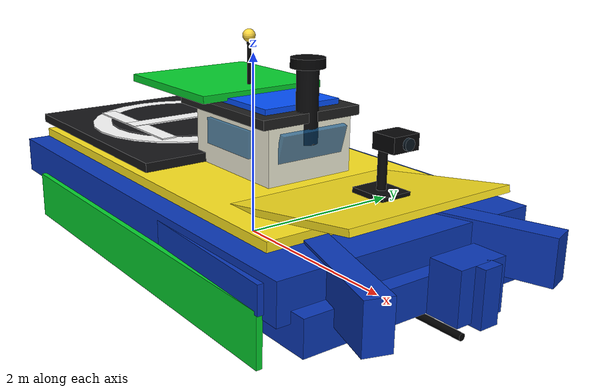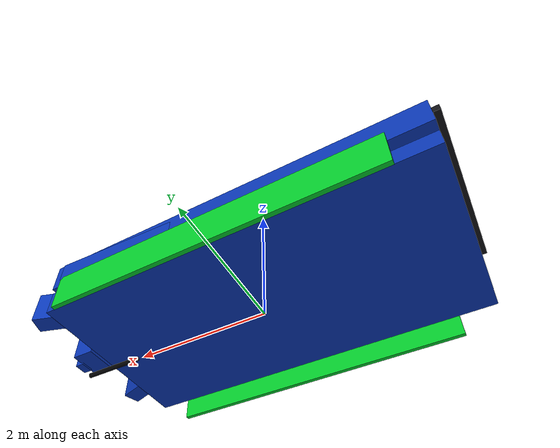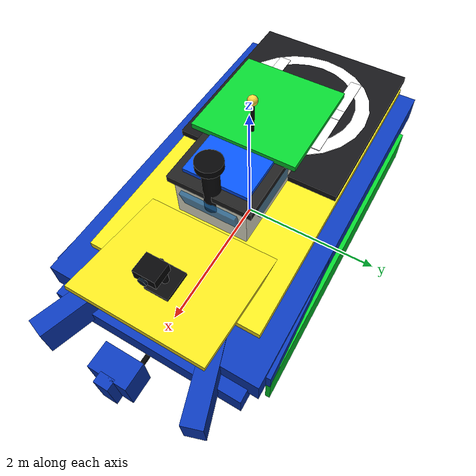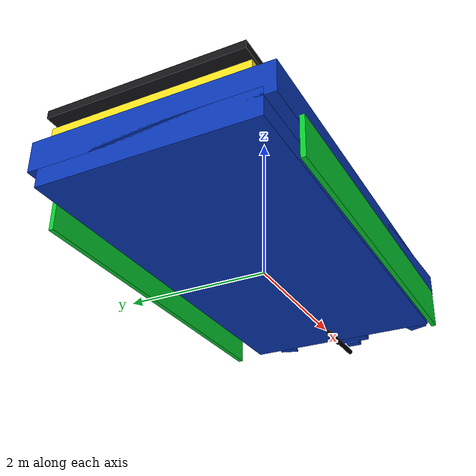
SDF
<?xml version="1.0"?>
<sdf version="1.10">
  <model name="sim332_usv_green">
    <include merge="true"><uri>model://defense_own_02_boat</uri></include>
    <link name="identity_shell">
      <visual name="port_band"><pose>0 1.53 0.12 0 0 0</pose><geometry><box><size>4.5 0.06 0.52</size></box></geometry><material><ambient>0.01 0.42 0.10 1</ambient><diffuse>0.02 0.82 0.18 1</diffuse><emissive>0 0.10 0.02 1</emissive></material></visual>
      <visual name="starboard_band"><pose>0 -1.53 0.12 0 0 0</pose><geometry><box><size>4.5 0.06 0.52</size></box></geometry><material><ambient>0.01 0.42 0.10 1</ambient><diffuse>0.02 0.82 0.18 1</diffuse><emissive>0 0.10 0.02 1</emissive></material></visual>
      <visual name="roof_id"><pose>-0.55 0 1.62 0 0 0</pose><geometry><box><size>1.5 1.5 0.08</size></box></geometry><material><ambient>0.01 0.42 0.10 1</ambient><diffuse>0.02 0.82 0.18 1</diffuse></material></visual>
    </link>
    <joint name="identity_joint" type="fixed"><parent>hull</parent><child>identity_shell</child></joint>
    <link name="ardupilot_io_left"><pose>0 0 0.3 0 0 0</pose><inertial><mass>0.001</mass><inertia><ixx>0.000001</ixx><iyy>0.000001</iyy><izz>0.000001</izz></inertia></inertial></link>
    <link name="ardupilot_io_right"><inertial><mass>0.001</mass><inertia><ixx>0.000001</ixx><iyy>0.000001</iyy><izz>0.000001</izz></inertia></inertial></link>
    <joint name="ardupilot_left_joint" type="fixed"><parent>hull</parent><child>ardupilot_io_left</child></joint><joint name="ardupilot_right_joint" type="fixed"><parent>hull</parent><child>ardupilot_io_right</child></joint>
    <plugin name="ArduPilotPlugin" filename="ArduPilotPlugin"><fdm_addr>127.0.0.1</fdm_addr><fdm_port_in>9042</fdm_port_in><connectionTimeoutMaxCount>5</connectionTimeoutMaxCount><lock_step>0</lock_step><no_time_sync>1</no_time_sync><derive_imu_accel_from_velocity>true</derive_imu_accel_from_velocity><modelXYZToAirplaneXForwardZDown degrees="true">0 0 0 180 0 0</modelXYZToAirplaneXForwardZDown><gazeboXYZToNED degrees="true">0 0 0 180 0 90</gazeboXYZToNED><imuName>hull::ardupilot_imu</imuName><control channel="0"><jointName>ardupilot_left_joint</jointName><type>COMMAND</type><servo_min>1000</servo_min><servo_max>2000</servo_max><cmd_topic>/model/usv_02/ardupilot/left</cmd_topic></control><control channel="2"><jointName>ardupilot_right_joint</jointName><type>COMMAND</type><servo_min>1000</servo_min><servo_max>2000</servo_max><cmd_topic>/model/usv_02/ardupilot/right</cmd_topic></control></plugin>
    <plugin name="uav_usv_gazebo::ArduPilotRoverBridge" filename="ArduPilotRoverBridge"><left_topic>/model/usv_02/ardupilot/left</left_topic><right_topic>/model/usv_02/ardupilot/right</right_topic><output_topic>/model/own_02/cmd_vel</output_topic><max_speed>10.0</max_speed><max_yaw_rate>0.9</max_yaw_rate><max_linear_accel>2.0</max_linear_accel><max_yaw_accel>0.8</max_yaw_accel></plugin>
  </model>
</sdf>

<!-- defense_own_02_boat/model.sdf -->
<sdf version="1.8">
  <model name="defense_own_02_boat">
    <pose>0 0 0.4375 0 0 0</pose>

    <link name="hull">
      <enable_wind>true</enable_wind>
      <inertial>
        <mass>150.0</mass>
        <inertia>
          <ixx>85.0</ixx>
          <iyy>180.0</iyy>
          <izz>220.0</izz>
          <ixy>0</ixy>
          <ixz>0</ixz>
          <iyz>0</iyz>
        </inertia>
      </inertial>

      <!-- Keep the ArduPilot IMU on the canonical link so Gazebo supplies
           gravity / specific force to ArduRover's EKF. -->
      <sensor name="ardupilot_imu" type="imu">
        <pose degrees="true">0 0 0 180 0 0</pose>
        <always_on>true</always_on>
        <update_rate>1000</update_rate>
      </sensor>

      <collision name="hull_collision">
        <pose>0 0 -0.0625 0 0 0</pose>
        <geometry>
          <box>
            <size>5.61 3.135 0.625</size>
          </box>
        </geometry>
      </collision>

      <visual name="lower_hull">
        <pose>-0.0825 0 -0.2 0 0 0</pose>
        <geometry>
          <box>
            <size>5.3625 2.7225 0.35</size>
          </box>
        </geometry>
        <material>
          <ambient>0.02 0.10 0.28 1</ambient>
          <diffuse>0.04 0.22 0.72 1</diffuse>
          <specular>0.1 0.1 0.1 1</specular>
        </material>
      </visual>

      <visual name="upper_hull">
        <pose>-0.165 0 0.0625 0 0 0</pose>
        <geometry>
          <box>
            <size>5.1975 3.003 0.4</size>
          </box>
        </geometry>
        <material>
          <ambient>0.02 0.10 0.28 1</ambient>
          <diffuse>0.04 0.22 0.72 1</diffuse>
          <specular>0.18 0.18 0.2 1</specular>
        </material>
      </visual>

      <visual name="bow_side_left">
        <pose>2.409 0.858 0.05 0 0 0.31</pose>
        <geometry>
          <box>
            <size>1.518 0.264 0.475</size>
          </box>
        </geometry>
        <material>
          <ambient>0.02 0.10 0.28 1</ambient>
          <diffuse>0.04 0.22 0.72 1</diffuse>
          <specular>0.18 0.18 0.2 1</specular>
        </material>
      </visual>

      <visual name="bow_side_right">
        <pose>2.409 -0.858 0.05 0 0 -0.31</pose>
        <geometry>
          <box>
            <size>1.518 0.264 0.475</size>
          </box>
        </geometry>
        <material>
          <ambient>0.02 0.10 0.28 1</ambient>
          <diffuse>0.04 0.22 0.72 1</diffuse>
          <specular>0.18 0.18 0.2 1</specular>
        </material>
      </visual>

      <visual name="bow_center_nose">
        <pose>3.003 0 0.05 0 0 0</pose>
        <geometry>
          <box>
            <size>0.33 0.528 0.5</size>
          </box>
        </geometry>
        <material>
          <ambient>0.02 0.10 0.28 1</ambient>
          <diffuse>0.04 0.22 0.72 1</diffuse>
          <specular>0.16 0.16 0.18 1</specular>
        </material>
      </visual>

      <visual name="bow_keel_line">
        <pose>2.5575 0 -0.425 0 1.5708 0</pose>
        <geometry>
          <cylinder>
            <radius>0.035</radius>
            <length>0.9</length>
          </cylinder>
        </geometry>
        <material>
          <ambient>0.006 0.006 0.008 1</ambient>
          <diffuse>0.012 0.012 0.014 1</diffuse>
        </material>
      </visual>

      <visual name="foredeck_slope">
        <pose>1.7325 0 0.45 0 -0.16 0</pose>
        <geometry>
          <box>
            <size>1.815 1.914 0.06875</size>
          </box>
        </geometry>
        <material>
          <ambient>0.75 0.75 0.08 1</ambient>
          <diffuse>1.00 0.90 0.12 1</diffuse>
          <specular>0.08 0.08 0.08 1</specular>
        </material>
      </visual>

      <visual name="bow_stem">
        <pose>3.201 0 0.0375 0 0 0</pose>
        <geometry>
          <box>
            <size>0.132 0.198 0.525</size>
          </box>
        </geometry>
        <material>
          <ambient>0.02 0.10 0.28 1</ambient>
          <diffuse>0.04 0.22 0.72 1</diffuse>
          <specular>0.16 0.16 0.18 1</specular>
        </material>
      </visual>

      <visual name="hull_side_fairing_left">
        <pose>0.0825 1.419 0.05 0 0 0.035</pose>
        <geometry>
          <box>
            <size>4.3725 0.132 0.275</size>
          </box>
        </geometry>
        <material>
          <ambient>0.02 0.10 0.28 1</ambient>
          <diffuse>0.04 0.22 0.72 1</diffuse>
          <specular>0.14 0.14 0.16 1</specular>
        </material>
      </visual>

      <visual name="hull_side_fairing_right">
        <pose>0.0825 -1.419 0.05 0 0 -0.035</pose>
        <geometry>
          <box>
            <size>4.3725 0.132 0.275</size>
          </box>
        </geometry>
        <material>
          <ambient>0.02 0.10 0.28 1</ambient>
          <diffuse>0.04 0.22 0.72 1</diffuse>
          <specular>0.14 0.14 0.16 1</specular>
        </material>
      </visual>

      <visual name="deck">
        <pose>-0.4125 0 0.3125 0 0 0</pose>
        <geometry>
          <box>
            <size>4.7025 2.475 0.1</size>
          </box>
        </geometry>
        <material>
          <ambient>0.75 0.75 0.08 1</ambient>
          <diffuse>1.00 0.90 0.12 1</diffuse>
          <specular>0.08 0.08 0.08 1</specular>
        </material>
      </visual>

      <visual name="cabin_body">
        <pose>0.33 0 0.725 0 0 0</pose>
        <geometry>
          <box>
            <size>1.287 1.023 0.6</size>
          </box>
        </geometry>
        <material>
          <ambient>0.86 0.86 0.8 1</ambient>
          <diffuse>0.96 0.95 0.86 1</diffuse>
          <specular>0.28 0.28 0.24 1</specular>
        </material>
      </visual>

      <visual name="front_window">
        <pose>0.99 0 0.8 0 0.28 0</pose>
        <geometry>
          <box>
            <size>0.05775 0.792 0.3</size>
          </box>
        </geometry>
        <material>
          <ambient>0.05 0.22 0.36 0.65</ambient>
          <diffuse>0.08 0.38 0.62 0.65</diffuse>
          <specular>0.9 0.95 1 1</specular>
        </material>
      </visual>

      <visual name="left_window">
        <pose>0.33 0.53625 0.8 0 0 0</pose>
        <geometry>
          <box>
            <size>0.7425 0.04125 0.275</size>
          </box>
        </geometry>
        <material>
          <ambient>0.05 0.22 0.36 0.65</ambient>
          <diffuse>0.08 0.38 0.62 0.65</diffuse>
          <specular>0.9 0.95 1 1</specular>
        </material>
      </visual>

      <visual name="right_window">
        <pose>0.33 -0.53625 0.8 0 0 0</pose>
        <geometry>
          <box>
            <size>0.7425 0.04125 0.275</size>
          </box>
        </geometry>
        <material>
          <ambient>0.05 0.22 0.36 0.65</ambient>
          <diffuse>0.08 0.38 0.62 0.65</diffuse>
          <specular>0.9 0.95 1 1</specular>
        </material>
      </visual>

      <visual name="cabin_roof">
        <pose>0.2475 0 1.0625 0 0 0</pose>
        <geometry>
          <box>
            <size>1.518 1.188 0.1</size>
          </box>
        </geometry>
        <material>
          <ambient>0.08 0.08 0.08 1</ambient>
          <diffuse>0.12 0.12 0.12 1</diffuse>
          <specular>0.18 0.18 0.18 1</specular>
        </material>
      </visual>

      <!-- Visual-only friendly identity plate. -->
      <visual name="friendly_identity_roof">
        <pose>0.2475 0 1.13 0 0 0</pose>
        <geometry><box><size>1.20 0.92 0.08</size></box></geometry>
        <material>
          <ambient>0.01 0.18 0.85 1</ambient>
          <diffuse>0.02 0.32 1.0 1</diffuse>
          <emissive>0 0.05 0.30 1</emissive>
        </material>
      </visual>

      <collision name="landing_pad_collision">
        <pose>-1.518 0 0.45 0 0 0</pose>
        <geometry>
          <box>
            <size>2.805 2.5575 0.3</size>
          </box>
        </geometry>
        <surface>
          <contact>
            <ode>
              <min_depth>0.001</min_depth>
              <max_vel>0</max_vel>
            </ode>
          </contact>
          <friction>
            <ode>
              <mu>1.5</mu>
              <mu2>1.5</mu2>
            </ode>
          </friction>
        </surface>
      </collision>

      <visual name="landing_pad_visual">
        <pose>-1.518 0 0.475 0 0 0</pose>
        <geometry>
          <box>
            <size>2.72 2.46 0.1</size>
          </box>
        </geometry>
        <material>
          <ambient>0.04 0.04 0.045 1</ambient>
          <diffuse>0.08 0.08 0.09 1</diffuse>
          <specular>0.08 0.08 0.08 1</specular>
        </material>
      </visual>

      <visual name="landing_pad_ring">
        <pose>-1.518 0 0.54375 0 0 0</pose>
        <geometry>
          <cylinder>
            <radius>1.08</radius>
            <length>0.015</length>
          </cylinder>
        </geometry>
        <material>
          <ambient>1 1 1 1</ambient>
          <diffuse>1 1 1 1</diffuse>
        </material>
      </visual>

      <visual name="landing_pad_center">
        <pose>-1.518 0 0.55625 0 0 0</pose>
        <geometry>
          <cylinder>
            <radius>0.86</radius>
            <length>0.0175</length>
          </cylinder>
        </geometry>
        <material>
          <ambient>0.04 0.04 0.045 1</ambient>
          <diffuse>0.08 0.08 0.09 1</diffuse>
        </material>
      </visual>

      <visual name="landing_h_left">
        <pose>-1.518 0.62 0.5725 0 0 0</pose>
        <geometry>
          <box>
            <size>1.55 0.18 0.015</size>
          </box>
        </geometry>
        <material>
          <ambient>1 1 1 1</ambient>
          <diffuse>1 1 1 1</diffuse>
        </material>
      </visual>

      <visual name="landing_h_right">
        <pose>-1.518 -0.62 0.5725 0 0 0</pose>
        <geometry>
          <box>
            <size>1.55 0.18 0.015</size>
          </box>
        </geometry>
        <material>
          <ambient>1 1 1 1</ambient>
          <diffuse>1 1 1 1</diffuse>
        </material>
      </visual>

      <visual name="landing_h_crossbar">
        <pose>-1.518 0 0.5775 0 0 0</pose>
        <geometry>
          <box>
            <size>0.2 1.42 0.015</size>
          </box>
        </geometry>
        <material>
          <ambient>1 1 1 1</ambient>
          <diffuse>1 1 1 1</diffuse>
        </material>
      </visual>

      <visual name="mast">
        <pose>-0.0825 0 1.375 0 0 0</pose>
        <geometry>
          <cylinder>
            <radius>0.0225</radius>
            <length>0.6875</length>
          </cylinder>
        </geometry>
        <material>
          <ambient>0.02 0.02 0.02 1</ambient>
          <diffuse>0.02 0.02 0.02 1</diffuse>
        </material>
      </visual>

      <visual name="nav_light">
        <pose>-0.0825 0 1.7375 0 0 0</pose>
        <geometry>
          <sphere>
            <radius>0.06875</radius>
          </sphere>
        </geometry>
        <material>
          <ambient>1 0.85 0.25 1</ambient>
          <diffuse>1 0.85 0.25 1</diffuse>
          <specular>1 0.9 0.5 1</specular>
        </material>
      </visual>

      <visual name="lidar_mount">
        <pose>0.9075 0 1.175 0 0 0</pose>
        <geometry>
          <cylinder>
            <radius>0.1125</radius>
            <length>0.775</length>
          </cylinder>
        </geometry>
        <material>
          <ambient>0.02 0.02 0.022 1</ambient>
          <diffuse>0.04 0.04 0.045 1</diffuse>
          <specular>0.2 0.2 0.22 1</specular>
        </material>
      </visual>

      <visual name="lidar_body">
        <pose>0.9075 0 1.5875 0 0 0</pose>
        <geometry>
          <cylinder>
            <radius>0.175</radius>
            <length>0.1</length>
          </cylinder>
        </geometry>
        <material>
          <ambient>0.01 0.01 0.012 1</ambient>
          <diffuse>0.02 0.02 0.024 1</diffuse>
          <specular>0.35 0.35 0.38 1</specular>
        </material>
      </visual>

      <visual name="front_camera_mount_base">
        <pose>1.98 0 0.56875 0 0 0</pose>
        <geometry>
          <box>
            <size>0.396 0.33 0.05</size>
          </box>
        </geometry>
        <material>
          <ambient>0.025 0.025 0.028 1</ambient>
          <diffuse>0.04 0.04 0.045 1</diffuse>
          <specular>0.18 0.18 0.2 1</specular>
        </material>
      </visual>

      <visual name="front_camera_mount_post">
        <pose>1.98 0 0.8125 0 0 0</pose>
        <geometry>
          <cylinder>
            <radius>0.04375</radius>
            <length>0.4375</length>
          </cylinder>
        </geometry>
        <material>
          <ambient>0.018 0.018 0.02 1</ambient>
          <diffuse>0.03 0.03 0.034 1</diffuse>
          <specular>0.18 0.18 0.2 1</specular>
        </material>
      </visual>

      <visual name="front_camera_body">
        <pose>2.1285 0 1.075 0 0 0</pose>
        <geometry>
          <box>
            <size>0.264 0.297 0.15</size>
          </box>
        </geometry>
        <material>
          <ambient>0.015 0.015 0.018 1</ambient>
          <diffuse>0.025 0.025 0.03 1</diffuse>
          <specular>0.2 0.2 0.22 1</specular>
        </material>
      </visual>

      <visual name="front_camera_lens">
        <pose>2.28525 0 1.075 0 1.5708 0</pose>
        <geometry>
          <cylinder>
            <radius>0.05625</radius>
            <length>0.03125</length>
          </cylinder>
        </geometry>
        <material>
          <ambient>0.02 0.04 0.06 1</ambient>
          <diffuse>0.03 0.08 0.12 1</diffuse>
          <specular>0.8 0.9 1 1</specular>
        </material>
      </visual>

      <sensor name="front_camera" type="camera">
        <pose>2.31825 0 1.075 0 0 0</pose>
        <topic>/defense/own_02/front_camera</topic>
        <update_rate>30</update_rate>
        <camera>
          <horizontal_fov>1.047</horizontal_fov>
          <image>
            <width>240</width>
            <height>135</height>
            <format>R8G8B8</format>
          </image>
          <clip>
            <near>0.05</near>
            <far>200</far>
          </clip>
        </camera>
        <always_on>true</always_on>
        <visualize>false</visualize>
      </sensor>

      <sensor name="depth_camera" type="depth_camera">
        <gz_frame_id>usv_02/depth_camera_link</gz_frame_id>
        <pose>3.24 0 1.55 0 0 0</pose>
        <topic>/defense/own_02/depth_camera</topic>
        <update_rate>15</update_rate>
        <camera>
          <horizontal_fov>1.047</horizontal_fov>
          <image>
            <width>240</width>
            <height>135</height>
            <format>R_FLOAT32</format>
          </image>
          <clip>
            <near>0.20</near>
            <far>80.0</far>
          </clip>
        </camera>
        <always_on>true</always_on>
        <visualize>false</visualize>
      </sensor>

      <sensor name="front_lidar" type="gpu_lidar">
        <gz_frame_id>own_02/hull/front_lidar</gz_frame_id>
        <pose>0.9075 0 1.5625 0 0 0</pose>
        <topic>/defense/own_02/scan</topic>
        <update_rate>10</update_rate>
        <ray>
          <scan>
            <horizontal>
              <samples>361</samples>
              <resolution>1</resolution>
              <min_angle>-1.5708</min_angle>
              <max_angle>1.5708</max_angle>
            </horizontal>
          </scan>
          <range>
            <min>0.35</min>
            <max>80</max>
            <resolution>0.02</resolution>
          </range>
          <noise>
            <type>gaussian</type>
            <mean>0</mean>
            <stddev>0.01</stddev>
          </noise>
          <visibility_mask>0x01</visibility_mask>
        </ray>
        <always_on>true</always_on>
        <visualize>false</visualize>
      </sensor>
    </link>

    <plugin
      filename="gz-sim-velocity-control-system"
      name="gz::sim::systems::VelocityControl">
      <topic>/model/own_02/cmd_vel</topic>
      <control_linear_velocity>true</control_linear_velocity>
      <control_angular_velocity>true</control_angular_velocity>
    </plugin>

    <plugin
      filename="gz-sim-pose-publisher-system"
      name="gz::sim::systems::PosePublisher">
      <publish_model_pose>true</publish_model_pose>
      <publish_link_pose>false</publish_link_pose>
      <publish_collision_pose>false</publish_collision_pose>
      <publish_visual_pose>false</publish_visual_pose>
      <publish_nested_model_pose>false</publish_nested_model_pose>
      <publish_sensor_pose>false</publish_sensor_pose>
      <use_pose_vector_msg>false</use_pose_vector_msg>
      /defense/own_02/pose
      <update_frequency>30</update_frequency>
    </plugin>

  </model>
</sdf>
